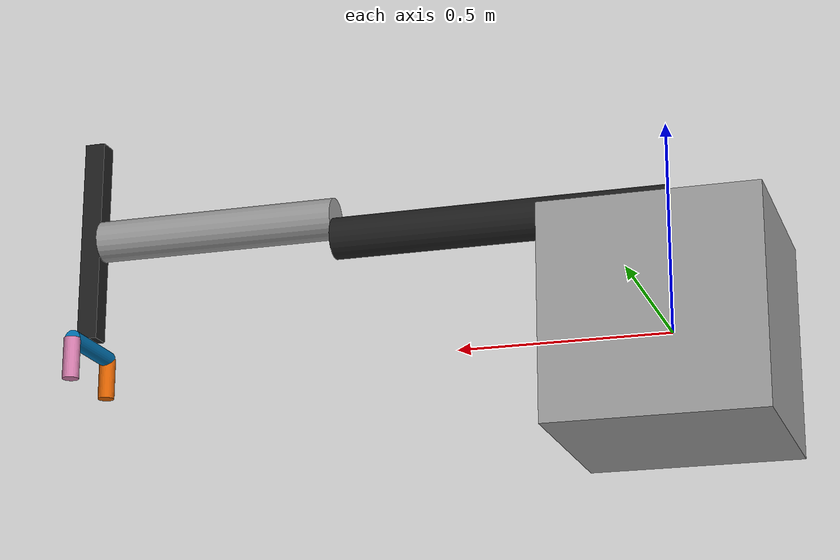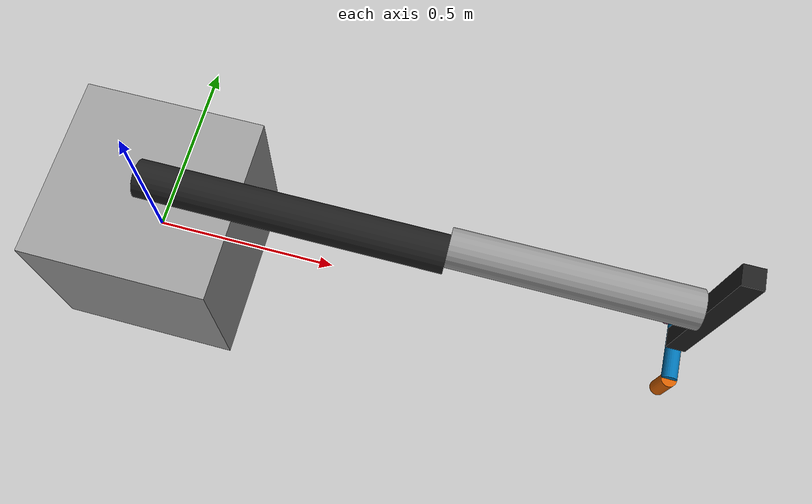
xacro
<?xml version="1.0" ?>

<robot name="robot_scara" xmlns:xacro="http://www.ros.org/wiki/xacro">

    <xacro:include filename="$(find robot_scara)/urdf/robot_parameters.xacro" />
    <xacro:include filename="$(find robot_scara)/urdf/links_joints.xacro" />

    <m_link_box name="${link_00_name}"
            origin_rpy="0 0 0" origin_xyz="0 0 0"
            mass="1024"
            ixx="170.667" ixy="0" ixz="0"
            iyy="170.667" iyz="0"
            izz="170.667"
            size="${link_length_0} ${link_length_0} ${link_length_0}" />

    <m_joint name="${link_00_name}__${link_01_name}" type="revolute"
            axis_xyz="0 0 1"
            origin_rpy="0 0 0" origin_xyz="0 0 ${link_length_0/2+radio_default}"
            parent="${link_00_name}" child="${link_01_name}"
            limit_e="1000" limit_l="-3.14" limit_u="3.14" limit_v="0.5" />

    <m_link_cylinder name="${link_01_name}"
            origin_rpy="0 ${pi/2} 0" origin_xyz="${l1/2} 0 0"
            radius="${radio_default}" length="${l1}"
            mass="1.5"
            ixx="0.01185" ixy="0" ixz="0"
            iyy="0.01185" iyz="0"
            izz="0.0012" />

    <m_joint name="${link_01_name}__${link_02_name}" type="revolute"
            axis_xyz="0 0 1"
            origin_rpy="0 0 0" origin_xyz="${l1} 0 ${radio_default}"
            parent="${link_01_name}" child="${link_02_name}"
            limit_e="1000" limit_l="-3.14" limit_u="3.14" limit_v="0.5" />

    <m_link_cylinder name="${link_02_name}"
            origin_rpy="0 ${pi/2} 0" origin_xyz="${l2/2} 0 0"
            radius="${radio_default}" length="${l2}"
            mass="1.5"
            ixx="0.01185" ixy="0" ixz="0"
            iyy="0.01185" iyz="0"
            izz="0.0012" />

    <m_joint name="${link_02_name}__${link_03_name}" type="prismatic"
            axis_xyz="0 0 1"
            origin_rpy="${pi} 0 0" origin_xyz="${l2+radio_default/2} 0 0"
            parent="${link_02_name}" child="${link_03_name}"
            limit_e="1000" limit_l="-${link_size_z_3/2}" limit_u="${link_size_z_3/2}" limit_v="0.5" />

    <m_link_box name="${link_03_name}"
              origin_rpy="0 0 0" origin_xyz="0 0 0"
              mass="2"
              ixx="0.01185" ixy="0" ixz="0"
              iyy="0.01185" iyz="0"
              izz="0.01185"
              size="${radio_default} ${radio_default} ${link_size_z_3}" />

    <m_joint name="${link_03_name}__${link_04_name}" type="revolute"
            axis_xyz="0 0 1"
            origin_rpy="0 0 0" origin_xyz="0 0 ${link_size_z_3/2+radio_gripper}"
            parent="${link_03_name}" child="${link_04_name}"
            limit_e="1000" limit_l="-3.14" limit_u="3.14" limit_v="0.5" />

    <m_link_cylinder name="${link_04_name}"
              origin_rpy="${pi/2} 0 0" origin_xyz="0 0 0"
              mass="0.4"
              ixx="0.05" ixy="0" ixz="0"
              iyy="0.002" iyz="0"
              izz="0.05"
              radius="${radio_gripper}" length="${l4}" />

    <m_joint name="${link_04_name}__${link_05_name}" type="prismatic"
           axis_xyz="0 1 0"
           origin_rpy="0 0 0" origin_xyz="0 ${l4/2} 0"
           parent="${link_04_name}" child="${link_05_name}"
           limit_e="100" limit_l="-${l4/2}" limit_u="0.0" limit_v="0.5" />

    <m_link_cylinder name="${link_05_name}"
              origin_rpy="0 0 0" origin_xyz="0 0 ${link_length_gripper/2}"
              mass="0.2"
              ixx="0.02" ixy="0" ixz="0"
              iyy="0.02" iyz="0"
              izz="0.001"
              radius="${radio_gripper}" length="${link_length_gripper}" />

    <m_joint name="${link_04_name}__${link_06_name}" type="prismatic"
           axis_xyz="0 1 0"
           origin_rpy="0 0 0" origin_xyz="0 -${l4/2} 0"
           parent="${link_04_name}" child="${link_06_name}"
           limit_e="100" limit_l="0" limit_u="${l4/2}" limit_v="0.5" />

    <m_link_cylinder name="${link_06_name}"
              origin_rpy="0 0 0" origin_xyz="0 0 ${link_length_gripper/2}"
              mass="0.2"
              ixx="0.02" ixy="0" ixz="0"
              iyy="0.02" iyz="0"
              izz="0.001"
              radius="${radio_gripper}" length="${link_length_gripper}" />

    <gazebo reference="${link_00_name}">
        <material>Gazebo/Gray</material>
    </gazebo>
    <gazebo reference="${link_01_name}">
        <material>Gazebo/Black</material>
    </gazebo>
    <gazebo reference="${link_02_name}">
        <material>Gazebo/Gray</material>
    </gazebo>
    <gazebo reference="${link_03_name}">
        <material>Gazebo/Black</material>
    </gazebo>

    <!-- Gazebo plugin for ROS Control -->
    <gazebo>
        <plugin name="gazebo_ros_control" filename="libgazebo_ros_control.so">
            <robotNamespace>/</robotNamespace>
        </plugin>
    </gazebo>

</robot>

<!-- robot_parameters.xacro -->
<robot xmlns:xacro="http://www.ros.org/wiki/xacro">

  <xacro:property name="link_00_name" value="base_link" />
  <xacro:property name="link_01_name" value="link_01" />
  <xacro:property name="link_02_name" value="link_02" />
  <xacro:property name="link_03_name" value="link_03" />
  <xacro:property name="link_04_name" value="link_04" />
  <xacro:property name="link_05_name" value="link_05" />
  <xacro:property name="link_06_name" value="link_06" />

  <xacro:property name="pi" value="3.14159" />

  <xacro:property name="l1" value="0.8" />
	<xacro:property name="l2" value="0.6" />
  <xacro:property name="l4" value="0.2" />

  <xacro:property name="radio_default" value="0.05" />
  <xacro:property name="radio_gripper" value="0.02" />
  <xacro:property name="link_length_0" value="0.5" />
  <xacro:property name="link_size_z_3" value="0.5" />
  <xacro:property name="link_length_gripper" value="0.1" />

</robot>

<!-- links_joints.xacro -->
<robot xmlns:xacro="http://www.ros.org/wiki/xacro">

  <xacro:macro name="m_joint" params="name type axis_xyz origin_rpy origin_xyz parent child limit_e limit_l limit_u limit_v">
    <joint name="${name}" type="${type}">
      <axis xyz="${axis_xyz}" />
      <limit effort="${limit_e}" lower="${limit_l}" upper="${limit_u}" velocity="${limit_v}" />
      <origin rpy="${origin_rpy}" xyz="${origin_xyz}" />
      <parent link="${parent}" />
      <child link="${child}" />
    </joint>
    <transmission name="trans_${name}">
      <type>transmission_interface/SimpleTransmission</type>
      <joint name="${name}">
        <hardwareInterface>hardware_interface/PositionJointInterface</hardwareInterface>
      </joint>
      <actuator name="motor_${name}">
        <mechanicalReduction>1</mechanicalReduction>
      </actuator>
    </transmission>
  </xacro:macro>

  <xacro:macro name="m_link_cylinder" params="name origin_xyz origin_rpy radius length mass ixx ixy ixz iyy iyz izz">
    <link name="${name}">
      <visual>
        <origin rpy="${origin_rpy}" xyz="${origin_xyz}" />
        <geometry>
          <cylinder radius="${radius}" length="${length}" />
        </geometry>
      </visual>
      <collision>
        <origin rpy="${origin_rpy}" xyz="${origin_xyz}" />
        <geometry>
          <cylinder radius="${radius}" length="${length}" />
        </geometry>
      </collision>
      <inertial>
        <mass value="${mass}" />
        <origin rpy="${origin_rpy}" xyz="${origin_xyz}" />
        <inertia ixx="${ixx}" ixy="${ixy}" ixz="${ixz}" iyy="${iyy}" iyz="${iyz}" izz="${izz}" />
      </inertial>
    </link>
  </xacro:macro>

  <xacro:macro name="m_link_box" params="name origin_xyz origin_rpy size mass ixx ixy ixz iyy iyz izz">
    <link name="${name}">
      <visual>
        <origin rpy="${origin_rpy}" xyz="${origin_xyz}" />
        <geometry>
          <box size="${size}" />
        </geometry>
      </visual>
      <collision>
        <origin rpy="${origin_rpy}" xyz="${origin_xyz}" />
        <geometry>
          <box size="${size}" />
        </geometry>
      </collision>
      <inertial>
        <mass value="${mass}" />
        <origin rpy="${origin_rpy}" xyz="${origin_xyz}" />
        <inertia ixx="${ixx}" ixy="${ixy}" ixz="${ixz}" iyy="${iyy}" iyz="${iyz}" izz="${izz}" />
      </inertial>
    </link>
  </xacro:macro>

</robot>
